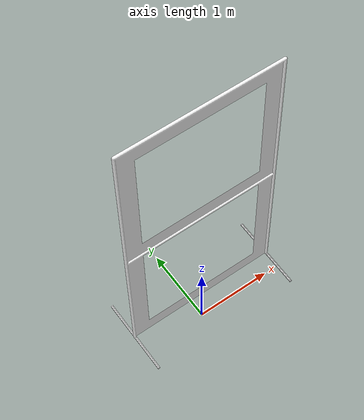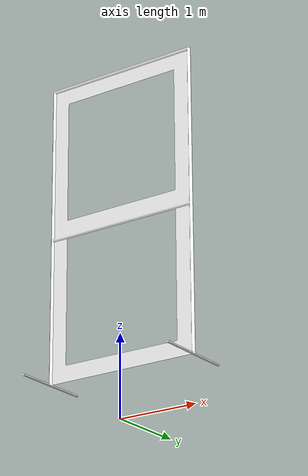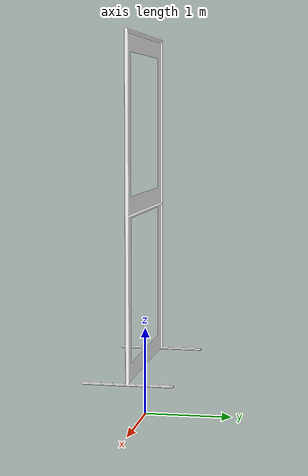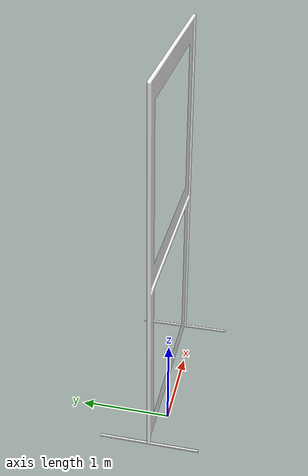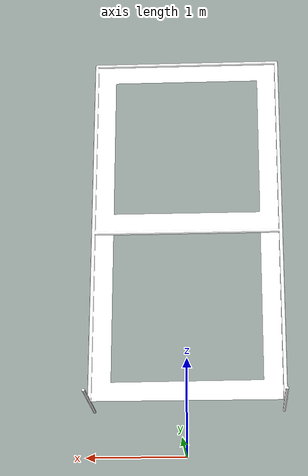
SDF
<?xml version="1.0"?>
<sdf version="1.9">
  <model name="frame_double_full">
    <static>true</static>
    <pose>0 0 0.57 0 0 0</pose>
    <link name="base_link">
      <visual name="visual">
        <geometry>
          <mesh>
            <uri>./meshes/frame_double_full.dae</uri>
          </mesh>
        </geometry>
      </visual>
      <collision name="collision">
        <geometry>
          <mesh>
            <uri>./meshes/frame_double_full.dae</uri>
          </mesh>
        </geometry>
      </collision>
    </link>
  </model>
</sdf>
